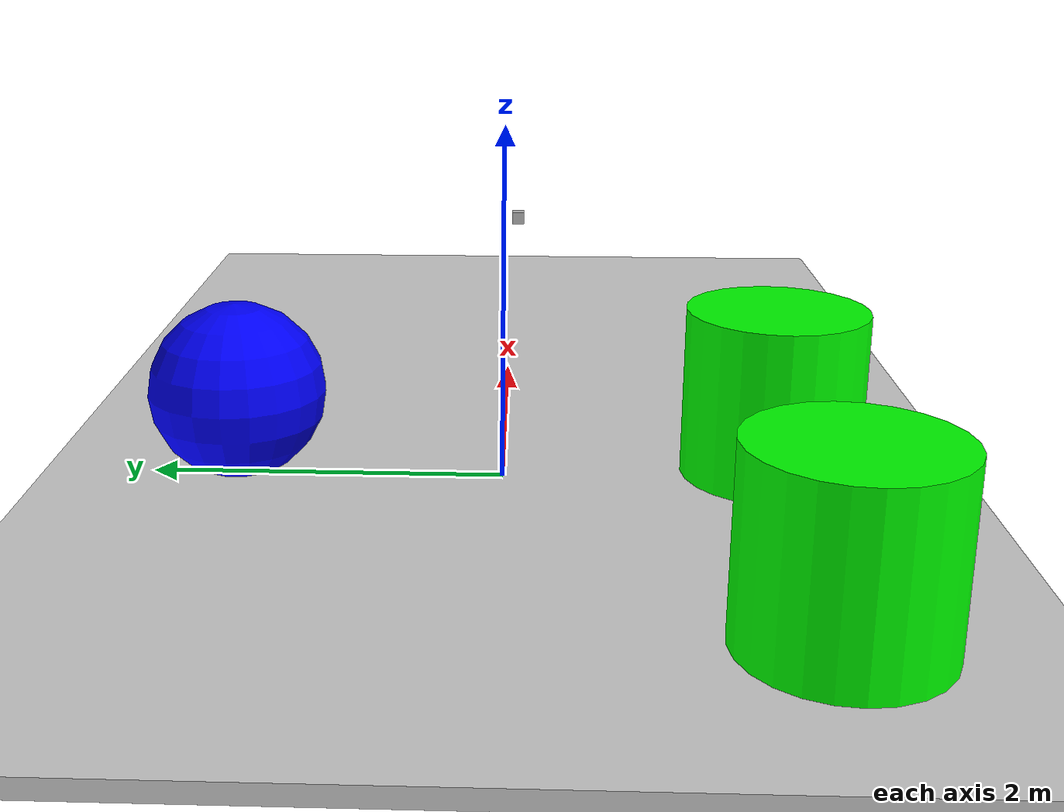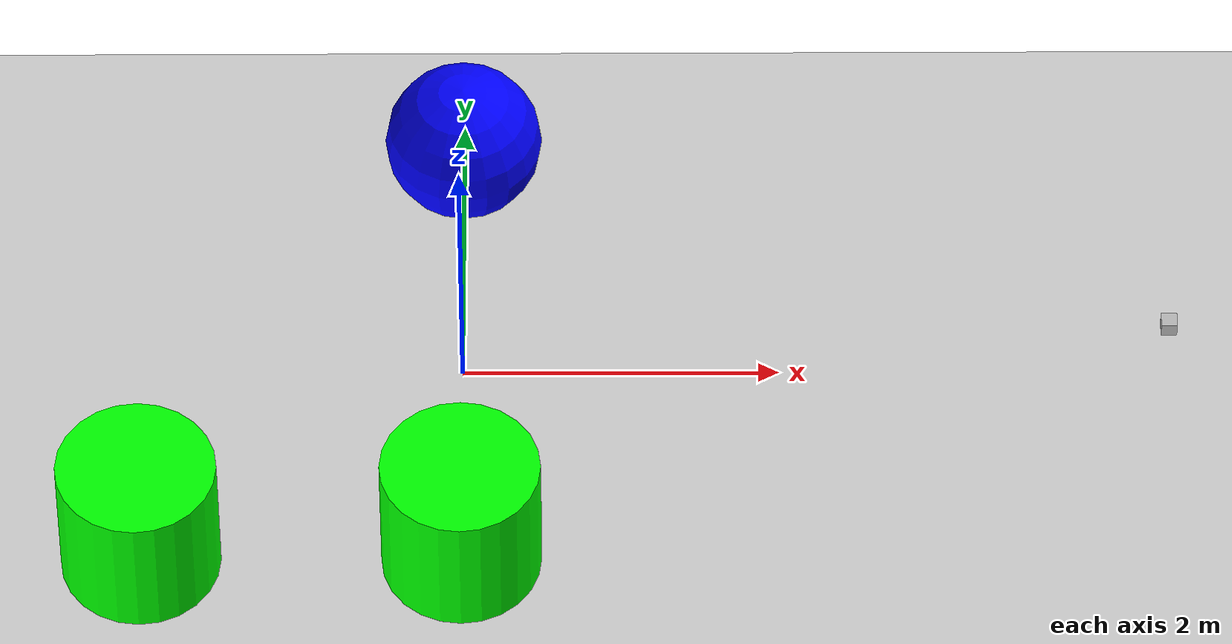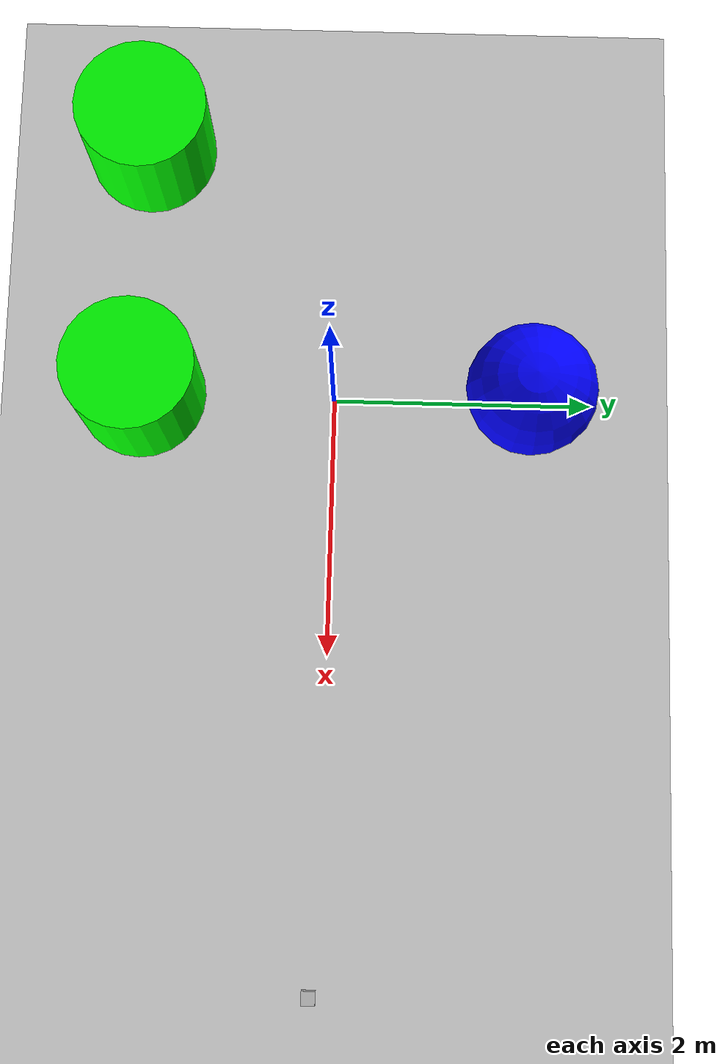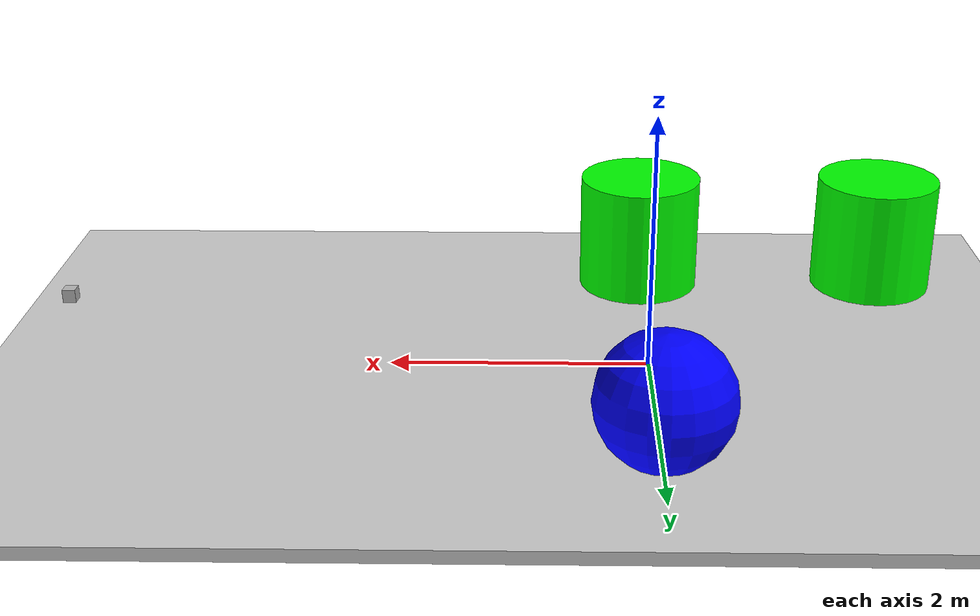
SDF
<sdf version="1.6">
 <world name="thermal_camera">
  <physics name="1ms" type="ode">
   <max_step_size>0.001</max_step_size>
   <real_time_factor>0</real_time_factor>
  </physics>
  <plugin filename="ignition-gazebo-physics-system" name="gz::sim::systems::Physics"/>
  <plugin filename="ignition-gazebo-sensors-system" name="gz::sim::systems::Sensors">
   <render_engine>ogre2</render_engine>
  </plugin>
  <plugin filename="ignition-gazebo-scene-broadcaster-system" name="gz::sim::systems::SceneBroadcaster"/>
  <light type="directional" name="sun">
   <pose>0 0 10 0 0 0</pose>
   <diffuse>0.8 0.8 0.8 1</diffuse>
   <specular>0.2 0.2 0.2 1</specular>
   <attenuation>
    <range>1000</range>
    <constant>0.9</constant>
    <linear>0.01</linear>
    <quadratic>0.001</quadratic>
   </attenuation>
   <direction>-0.5 0.1 -0.9</direction>
  </light>
  <atmosphere type="adiabatic"><temperature>310</temperature></atmosphere>
  <model name="ground_plane">
   <static>true</static>
   <link name="link">
    <collision name="collision"><geometry><box><size>20 20 0.1</size></box></geometry></collision>
    <visual name="visual">
     <geometry><box><size>20 20 0.1</size></box></geometry>
     <material>
      <ambient>0.8 0.8 0.8 1</ambient>
      <diffuse>0.8 0.8 0.8 1</diffuse>
      <specular>0.8 0.8 0.8 1</specular>
     </material>
    </visual>
   </link>
  </model>
  <model name="sphere">
   <pose>0 1.5 0.5 0 0 0</pose>
   <link name="sphere_link">
    <inertial>
     <inertia><ixx>3</ixx><ixy>0</ixy><ixz>0</ixz><iyy>3</iyy><iyz>0</iyz><izz>3</izz></inertia>
     <mass>3.0</mass>
    </inertial>
    <collision name="sphere_collision"><geometry><sphere><radius>0.5</radius></sphere></geometry></collision>
    <visual name="sphere_visual">
     <geometry><sphere><radius>0.5</radius></sphere></geometry>
     <material><ambient>0 0 1 1</ambient><diffuse>0 0 1 1</diffuse><specular>0 0 1 1</specular></material>
     <plugin filename="ignition-gazebo-thermal-system" name="gz::sim::systems::Thermal">
      <temperature>600.0</temperature>
     </plugin>
    </visual>
   </link>
  </model>
  <model name="cylinder">
   <pose>0 -1.5 0.5 0 0 0</pose>
   <link name="cylinder_link">
    <inertial>
     <inertia><ixx>2</ixx><ixy>0</ixy><ixz>0</ixz><iyy>2</iyy><iyz>0</iyz><izz>2</izz></inertia>
     <mass>2.0</mass>
    </inertial>
    <collision name="cylinder_collision">
     <geometry><cylinder><radius>0.5</radius><length>1.0</length></cylinder></geometry>
    </collision>
    <visual name="cylinder_visual">
     <geometry><cylinder><radius>0.5</radius><length>1.0</length></cylinder></geometry>
     <material><ambient>0 1 0 1</ambient><diffuse>0 1 0 1</diffuse><specular>0 1 0 1</specular></material>
     <plugin filename="ignition-gazebo-thermal-system" name="gz::sim::systems::Thermal">
      <temperature>400.0</temperature>
     </plugin>
    </visual>
   </link>
  </model>
  <model name="heat_signature_cylinder">
   <pose>-2 -1.5 0.5 0 0 0</pose>
   <link name="heat_signature_cylinder_link">
    <inertial>
     <inertia><ixx>2</ixx><ixy>0</ixy><ixz>0</ixz><iyy>2</iyy><iyz>0</iyz><izz>2</izz></inertia>
     <mass>2.0</mass>
    </inertial>
    <collision name="heat_signature_cylinder_collision">
     <geometry><cylinder><radius>0.5</radius><length>1.0</length></cylinder></geometry>
    </collision>
    <visual name="heat_signature_cylinder_visual">
     <geometry><cylinder><radius>0.5</radius><length>1.0</length></cylinder></geometry>
     <material><ambient>0 1 0 1</ambient><diffuse>0 1 0 1</diffuse><specular>0 1 0 1</specular></material>
     <plugin filename="ignition-gazebo-thermal-system" name="gz::sim::systems::Thermal">
      <heat_signature>../media/duck.png</heat_signature>
      <temperature>400.0</temperature>
     </plugin>
    </visual>
   </link>
  </model>
  <model name="heat_signature_sphere">
   <pose>0 1.5 0.5 0 0 0</pose>
   <link name="heat_signature_sphere_link">
    <inertial>
     <inertia><ixx>3</ixx><ixy>0</ixy><ixz>0</ixz><iyy>3</iyy><iyz>0</iyz><izz>3</izz></inertia>
     <mass>3.0</mass>
    </inertial>
    <collision name="sheat_signature_phere_collision">
     <geometry><sphere><radius>0.5</radius></sphere></geometry>
    </collision>
    <visual name="heat_signature_sphere_visual">
     <geometry><sphere><radius>0.5</radius></sphere></geometry>
     <material><ambient>0 0 1 1</ambient><diffuse>0 0 1 1</diffuse><specular>0 0 1 1</specular></material>
     <plugin filename="ignition-gazebo-thermal-system" name="ignition::gazebo::systems::Thermal">
      <heat_signature>../media/duck.png</heat_signature>
      <max_temp>500.0</max_temp>
     </plugin>
    </visual>
   </link>
  </model>
  <model name="heat_signature_sphere_2">
   <pose>0 1.5 0.5 0 0 0</pose>
   <link name="heat_signature_sphere_link_2">
    <inertial>
     <inertia><ixx>3</ixx><ixy>0</ixy><ixz>0</ixz><iyy>3</iyy><iyz>0</iyz><izz>3</izz></inertia>
     <mass>3.0</mass>
    </inertial>
    <collision name="sheat_signature_phere_collision_2">
     <geometry><sphere><radius>0.5</radius></sphere></geometry>
    </collision>
    <visual name="heat_signature_sphere_visual_2">
     <geometry><sphere><radius>0.5</radius></sphere></geometry>
     <material><ambient>0 0 1 1</ambient><diffuse>0 0 1 1</diffuse><specular>0 0 1 1</specular></material>
     <plugin filename="ignition-gazebo-thermal-system" name="ignition::gazebo::systems::Thermal">
      <heat_signature>../media/duck.png</heat_signature>
      <min_temp>400.0</min_temp>
     </plugin>
    </visual>
   </link>
  </model>
  <model name="thermal_camera_8bit">
   <pose>4.5 0 0.5 0.0 0.0 3.14</pose>
   <link name="link">
    <pose>0.05 0.05 0.05 0 0 0</pose>
    <collision name="collision"><geometry><box><size>0.1 0.1 0.1</size></box></geometry></collision>
    <visual name="visual"><geometry><box><size>0.1 0.1 0.1</size></box></geometry></visual>
    <sensor name="thermal_camera_8bit" type="thermal">
     <camera>
      <horizontal_fov>1.047</horizontal_fov>
      <image><width>320</width><height>240</height><format>L8</format></image>
      <clip><near>0.1</near><far>100</far></clip>
     </camera>
     <always_on>1</always_on>
     <update_rate>30</update_rate>
     <visualize>true</visualize>
     <topic>thermal_camera_8bit/image</topic>
     <plugin filename="ignition-gazebo-thermal-sensor-system" name="ignition::gazebo::systems::ThermalSensor">
      <min_temp>253.15</min_temp>
      <max_temp>673.15</max_temp>
      <resolution>3.0</resolution>
     </plugin>
    </sensor>
   </link>
   <static>true</static>
  </model>
 </world>
</sdf>
